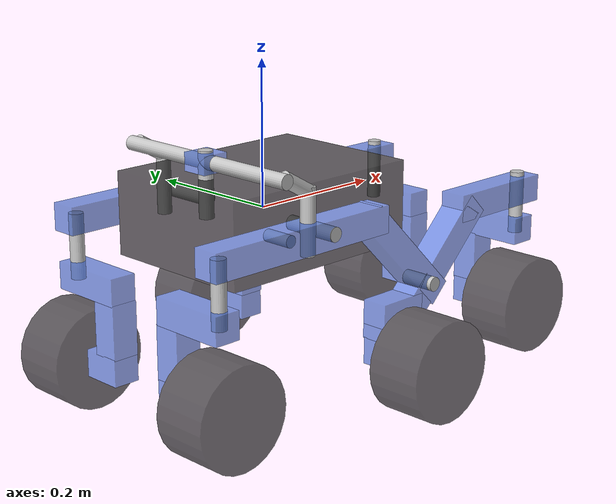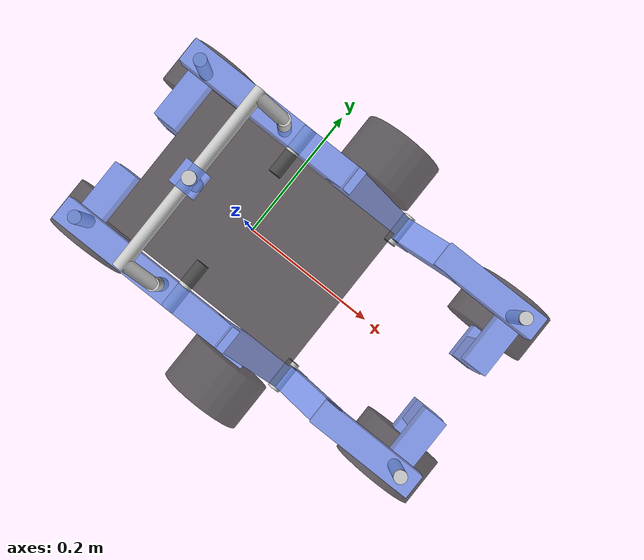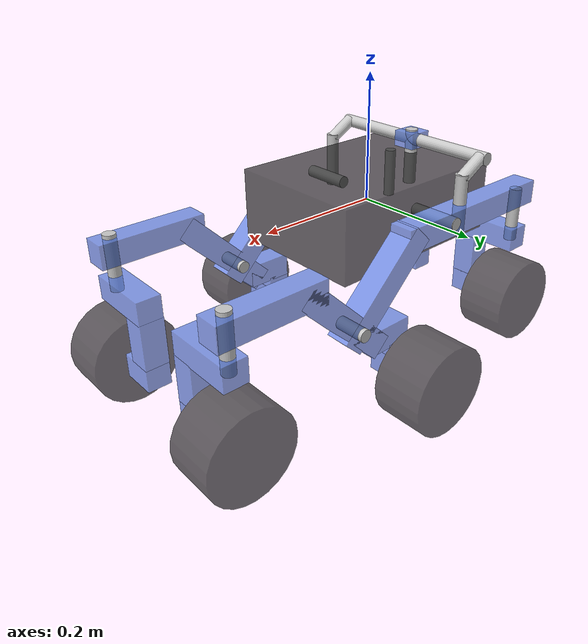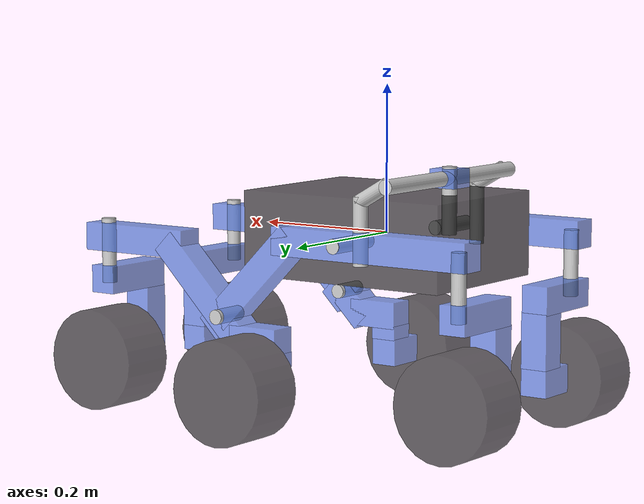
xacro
<?xml version="1.0" encoding="utf-8"?>

<robot name="angela_robot" xmlns:xacro="http://www.ros.org/wiki/xacro">

<xacro:property name="SM" value="0.001" /> <!--size multiplier-->

<xacro:property name="CHASSIS_WIDTH" value="${225*SM}" />
<xacro:property name="CHASSIS_HEIGHT" value="${115*SM}" />
<xacro:property name="CHASSIS_LENGTH" value="${310*SM}" />

<xacro:property name="WHEEL_RADIUS" value="${70*SM}" />
<xacro:property name="WHEEL_THICKNESS" value="${80*SM}" />

<xacro:property name="RB_RADIUS" value="${10*SM}" />
<xacro:property name="RB_LENGTH" value="${80*SM}" />

<xacro:property name="CORNER_RADIUS" value="${10*SM}" />
<xacro:property name="CORNER_LENGTH" value="${90*SM}" />

<xacro:property name="FRONT_RADIUS" value="${10*SM}" />
<xacro:property name="FRONT_LENGTH" value="${50*SM}" />

<xacro:property name="chassisMass" value="5.0" />
<xacro:property name="rbMass" value="0.05" />
<xacro:property name="wheelMass" value="0.4" />

<xacro:property name="rbMu" value="0.8" />
<xacro:property name="rbMu2" value="0.8" />
<xacro:property name="rbKp" value="1000000.0" />
<xacro:property name="rbKd" value="1.0" />
<xacro:property name="rbMinDepth" value="0.001" />
<xacro:property name="rbMaxVel" value="0.0" />

<xacro:property name="cornerMu" value="0.8" />
<xacro:property name="cornerMu2" value="0.8" />
<xacro:property name="cornerKp" value="1000000.0" />
<xacro:property name="cornerKd" value="1.0" />
<xacro:property name="cornerMinDepth" value="0.001" />
<xacro:property name="cornerMaxVel" value="0.0" />

<xacro:property name="wheelMu" value="0.8" />
<xacro:property name="wheelMu2" value="0.8" />
<xacro:property name="wheelKp" value="1000000.0" />
<xacro:property name="wheelKd" value="1.0" />
<xacro:property name="wheelMinDepth" value="0.001" />
<xacro:property name="wheelMaxVel" value="0.0" />

<xacro:include filename="$(find angela_description)/urdf/materials.xacro" />
<xacro:include filename="$(find angela_description)/urdf/macros.xacro" />
<xacro:include filename="$(find angela_description)/urdf/angela_v1.gazebo" />

    <!-- CHASSIS START -->
    <link name="base_link">
    <visual>
        <default_origin />
        <geometry>
        <box size="${CHASSIS_LENGTH} ${CHASSIS_WIDTH} ${CHASSIS_HEIGHT}"/>
        </geometry>
        <material name="black" />
    </visual>
    <collision>
        <default_origin />
        <geometry>
        <box size="${CHASSIS_LENGTH} ${CHASSIS_WIDTH} ${CHASSIS_HEIGHT}"/>
        </geometry>
    </collision>
    <inertial>
        <default_origin />
        <mass value="${chassisMass}"/>
        <box_inertia m="${chassisMass}" x="${CHASSIS_LENGTH}" y="${CHASSIS_WIDTH}" z="${CHASSIS_HEIGHT}"/>
    </inertial>
    </link>
    <!-- CHASSIS END -->

    <!-- LEFT RB START -->
    <cylinderLink
        c_name="left_rb_link"
        c_mass="${rbMass}"
        c_materialName="grey"
        c_radius="${RB_RADIUS}"
        c_length="${RB_LENGTH}"
        c_mu="${rbMu}"
        c_mu2="${rbMu2}"
        c_kp="${rbKp}"
        c_kd="${rbKd}"
        c_min_depth="${rbMinDepth}"
        c_max_vel="${rbMaxVel}"
        c_originrpy="${pi/2} 0 0"
        c_originxyz="0 0 0" />

    <joint name="left_rb_joint" type="revolute">
        <origin xyz="-0.025 0.12 0" />
        <parent link="base_link" />
        <child link="left_rb_link" />
        <axis xyz="0 1 0" />
        <limit effort="30" velocity="1.0" lower="-1" upper="1" />
    </joint>
    <!-- LEFT RB END -->

    <!-- RIGHT RB START -->
    <cylinderLink
        c_name="right_rb_link"
        c_mass="${rbMass}"
        c_materialName="grey"
        c_radius="${RB_RADIUS}"
        c_length="${RB_LENGTH}"
        c_mu="${rbMu}"
        c_mu2="${rbMu2}"
        c_kp="${rbKp}"
        c_kd="${rbKd}"
        c_min_depth="${rbMinDepth}"
        c_max_vel="${rbMaxVel}"
        c_originrpy="${pi/2} 0 0"
        c_originxyz="0 0 0" />

    <joint name="right_rb_joint" type="revolute">
        <origin xyz="-0.025 -0.12 0" />
        <parent link="base_link" />
        <child link="right_rb_link" />
        <axis xyz="0 1 0" />
        <limit effort="30" velocity="1.0" lower="-1" upper="1" />
    </joint>
    <!-- RIGHT RB END -->

    <!-- LEFT CHASSIS 1 START -->
    <u_channel u_name="left_chassis_1" u_length="0.3" u_parent="left_rb_link" u_originxyz="-0.05 0.02 0" u_originrpy="0 0 0" />
    <u_channel u_name="right_chassis_1" u_length="0.3" u_parent="right_rb_link" u_originxyz="-0.05 -0.02 0" u_originrpy="0 0 0" />

    <u_channel u_name="left_chassis_2" u_length="0.19" u_parent="left_chassis_1_link" u_originxyz="0.19 0 -0.06" u_originrpy="0 ${pi / 4} 0" />
    <u_channel u_name="right_chassis_2" u_length="0.19" u_parent="right_chassis_1_link" u_originxyz="0.19 0 -0.06" u_originrpy="0 ${pi / 4} 0" />
    <!-- LEFT CHASSIS 1 END -->

    <!-- LEFT CORNER BACK START -->
    <cylinderLink
        c_name="left_corner_back_link"
        c_mass="${rbMass}"
        c_materialName="grey"
        c_radius="${CORNER_RADIUS}"
        c_length="${CORNER_LENGTH}"
        c_mu="${cornerMu}"
        c_mu2="${cornerMu2}"
        c_kp="${cornerKp}"
        c_kd="${cornerKd}"
        c_min_depth="${cornerMinDepth}"
        c_max_vel="${cornerMaxVel}"
        c_originrpy="0 0 0"
        c_originxyz="0 0 0" />

    <joint name="left_corner_back_joint" type="revolute">
        <origin xyz="-0.13 0 -0.04" rpy="0 0 ${pi/2}" />
        <parent link="left_chassis_1_link" />
        <child link="left_corner_back_link" />
        <axis xyz="0 0 1" />
        <limit effort="30" velocity="1.0" lower="${-pi/3}" upper="${pi/3}" />
    </joint>

    <u_channel u_name="left_chassis_3" u_length="0.11" u_parent="left_corner_back_link" u_originxyz="-0.04 0 -0.04" u_originrpy="0 0 0" />

    <u_channel u_name="left_chassis_4" u_length="0.075" u_parent="left_chassis_3_link" u_originxyz="-0.037 0 -0.055" u_originrpy="0 ${pi / 2} 0" />

    <u_channel u_name="left_chassis_5" u_length="0.075" u_parent="left_chassis_4_link" u_originxyz="0.055 0 0.019" u_originrpy="0 ${pi / 2} 0" />

    <!-- LEFT CORNER BACK END -->

    <!-- RIGHT CORNER BACK START -->
    <cylinderLink
        c_name="right_corner_back_link"
        c_mass="${rbMass}"
        c_materialName="grey"
        c_radius="${CORNER_RADIUS}"
        c_length="${CORNER_LENGTH}"
        c_mu="${cornerMu}"
        c_mu2="${cornerMu2}"
        c_kp="${cornerKp}"
        c_kd="${cornerKd}"
        c_min_depth="${cornerMinDepth}"
        c_max_vel="${cornerMaxVel}"
        c_originrpy="0 0 0"
        c_originxyz="0 0 0" />

    <joint name="right_corner_back_joint" type="revolute">
        <origin xyz="-0.13 0 -0.04" rpy="0 0 ${-pi/2}" />
        <parent link="right_chassis_1_link" />
        <child link="right_corner_back_link" />
        <axis xyz="0 0 1" />
        <limit effort="30" velocity="1.0" lower="${-pi/3}" upper="${pi/3}" />
    </joint>

    <u_channel u_name="right_chassis_3" u_length="0.11" u_parent="right_corner_back_link" u_originxyz="-0.04 0 -0.04" u_originrpy="0 0 0" />

    <u_channel u_name="right_chassis_4" u_length="0.075" u_parent="right_chassis_3_link" u_originxyz="-0.037 0 -0.055" u_originrpy="0 ${pi / 2} 0" />

    <u_channel u_name="right_chassis_5" u_length="0.075" u_parent="right_chassis_4_link" u_originxyz="0.055 0 0.019" u_originrpy="0 ${pi / 2} 0" />

    <!-- LEFT CORNER BACK END -->

    <!-- LEFT BACK WHEEL START -->
    <cylinderLink
        c_name="left_back_wheel_link"
        c_mass="${wheelMass}"
        c_materialName="black"
        c_radius="${WHEEL_RADIUS}"
        c_length="${WHEEL_THICKNESS}"
        c_mu="${wheelMu}"
        c_mu2="${wheelMu2}"
        c_kp="${wheelKp}"
        c_kd="${wheelKd}"
        c_min_depth="${wheelMinDepth}"
        c_max_vel="${wheelMaxVel}"
        c_originrpy="${pi /2} 0 ${pi /2}"
        c_originxyz="0 0 0" />

    <joint name="left_back_wheel_joint" type="continuous">
        <origin xyz="-0.06 0 0" rpy="0 0 0" />
        <parent link="left_chassis_5_link" />
        <child link="left_back_wheel_link" />
        <axis xyz="1 0 0" />
    </joint>
    <!-- LEFT BACK WHEEL END -->

    <!-- RIGHT BACK WHEEL START -->
    <cylinderLink
        c_name="right_back_wheel_link"
        c_mass="${wheelMass}"
        c_materialName="black"
        c_radius="${WHEEL_RADIUS}"
        c_length="${WHEEL_THICKNESS}"
        c_mu="${wheelMu}"
        c_mu2="${wheelMu2}"
        c_kp="${wheelKp}"
        c_kd="${wheelKd}"
        c_min_depth="${wheelMinDepth}"
        c_max_vel="${wheelMaxVel}"
        c_originrpy="${pi /2} 0 ${pi /2}"
        c_originxyz="0 0 0" />

    <joint name="right_back_wheel_joint" type="continuous">
        <origin xyz="-0.06 0 0" rpy="0 0 0" />
        <parent link="right_chassis_5_link" />
        <child link="right_back_wheel_link" />
        <axis xyz="1 0 0" />
    </joint>
    <!-- RIGHT BACK WHEEL END -->

    <!-- LEFT MIDDLE START -->
    <cylinderLink
        c_name="left_chassis_6_link"
        c_mass="${rbMass}"
        c_materialName="grey"
        c_radius="${FRONT_RADIUS}"
        c_length="${FRONT_LENGTH}"
        c_mu="${cornerMu}"
        c_mu2="${cornerMu2}"
        c_kp="${cornerKp}"
        c_kd="${cornerKd}"
        c_min_depth="${cornerMinDepth}"
        c_max_vel="${cornerMaxVel}"
        c_originrpy="0 0 0"
        c_originxyz="0 0 0" />

    <joint name="left_chassis_6_joint" type="revolute">
        <origin xyz="0.07 0 0" rpy="${pi/2} 0 0" />
        <parent link="left_chassis_2_link" />
        <child link="left_chassis_6_link" />
        <axis xyz="0 0 1" />
        <limit effort="30" velocity="1.0" lower="${-pi/3}" upper="${pi/3}" />
    </joint>

    <u_channel u_name="left_chassis_7" u_length="0.19" u_parent="left_chassis_6_link" u_originxyz="0 0.04 0" u_originrpy="0 0 ${pi/2}" />
    <u_channel u_name="left_chassis_8" u_length="0.17" u_parent="left_chassis_7_link" u_originxyz="0.13 -0.04 0" u_originrpy="0 0 ${-pi/4}" />
    <u_channel u_name="left_chassis_9" u_length="0.075" u_parent="left_chassis_7_link" u_originxyz="-0.1 0.02 0" u_originrpy="0 0 ${-pi/4}" />
    <u_channel u_name="left_chassis_10" u_length="0.02" u_parent="left_chassis_9_link" u_originxyz="-0.019 -0.025 0" u_originrpy="0 0 ${pi/2}" />
    <u_channel u_name="left_chassis_11" u_length="0.075" u_parent="left_chassis_10_link" u_originxyz="-0.028 0 -0.02" u_originrpy="0 ${pi / 2} 0" />
    <!-- LEFT MIDDLE END-->

    <!-- RIGHT MIDDLE START -->
    <cylinderLink
        c_name="right_chassis_6_link"
        c_mass="${rbMass}"
        c_materialName="grey"
        c_radius="${FRONT_RADIUS}"
        c_length="${FRONT_LENGTH}"
        c_mu="${cornerMu}"
        c_mu2="${cornerMu2}"
        c_kp="${cornerKp}"
        c_kd="${cornerKd}"
        c_min_depth="${cornerMinDepth}"
        c_max_vel="${cornerMaxVel}"
        c_originrpy="0 0 0"
        c_originxyz="0 0 0" />

    <joint name="right_chassis_6_joint" type="revolute">
        <origin xyz="0.07 0 0" rpy="${pi/2} 0 0" />
        <parent link="right_chassis_2_link" />
        <child link="right_chassis_6_link" />
        <axis xyz="0 0 1" />
        <limit effort="30" velocity="1.0" lower="${-pi/3}" upper="${pi/3}" />
    </joint>

    <u_channel u_name="right_chassis_7" u_length="0.19" u_parent="right_chassis_6_link" u_originxyz="0 0.04 0" u_originrpy="0 0 ${pi/2}" />
    <u_channel u_name="right_chassis_8" u_length="0.17" u_parent="right_chassis_7_link" u_originxyz="0.13 -0.04 0" u_originrpy="0 0 ${-pi/4}" />
    <u_channel u_name="right_chassis_9" u_length="0.075" u_parent="right_chassis_7_link" u_originxyz="-0.1 0.02 0" u_originrpy="0 0 ${-pi/4}" />
    <u_channel u_name="right_chassis_10" u_length="0.02" u_parent="right_chassis_9_link" u_originxyz="-0.019 -0.025 0" u_originrpy="0 0 ${pi/2}" />
    <u_channel u_name="right_chassis_11" u_length="0.075" u_parent="right_chassis_10_link" u_originxyz="-0.028 0 0.02" u_originrpy="0 ${pi / 2} 0" />
    <!-- RIGHT MIDDLE END-->

    <!-- LEFT MIDDLE WHEEL START -->
    <cylinderLink
        c_name="left_middle_wheel_link"
        c_mass="${wheelMass}"
        c_materialName="black"
        c_radius="${WHEEL_RADIUS}"
        c_length="${WHEEL_THICKNESS}"
        c_mu="${wheelMu}"
        c_mu2="${wheelMu2}"
        c_kp="${wheelKp}"
        c_kd="${wheelKd}"
        c_min_depth="${wheelMinDepth}"
        c_max_vel="${wheelMaxVel}"
        c_originrpy="${pi /2} 0 ${pi /2}"
        c_originxyz="0 0 0" />

    <joint name="left_middle_wheel_joint" type="continuous">
        <origin xyz="0.06 0 0" rpy="0 0 0" />
        <parent link="left_chassis_11_link" />
        <child link="left_middle_wheel_link" />
        <axis xyz="1 0 0" />
    </joint>
    <!-- LEFT MIDDLE WHEEL END -->

    <!-- RIGHT MIDDLE WHEEL START -->
    <cylinderLink
        c_name="right_middle_wheel_link"
        c_mass="${wheelMass}"
        c_materialName="black"
        c_radius="${WHEEL_RADIUS}"
        c_length="${WHEEL_THICKNESS}"
        c_mu="${wheelMu}"
        c_mu2="${wheelMu2}"
        c_kp="${wheelKp}"
        c_kd="${wheelKd}"
        c_min_depth="${wheelMinDepth}"
        c_max_vel="${wheelMaxVel}"
        c_originrpy="${pi /2} 0 ${pi /2}"
        c_originxyz="0 0 0" />

    <joint name="right_middle_wheel_joint" type="continuous">
        <origin xyz="-0.06 0 0" rpy="0 0 0" />
        <parent link="right_chassis_11_link" />
        <child link="right_middle_wheel_link" />
        <axis xyz="1 0 0" />
    </joint>
    <!-- RIGHT MIDDLE WHEEL END -->

    <!-- LEFT CORNER FRONT START -->
    <cylinderLink
        c_name="left_corner_front_link"
        c_mass="${rbMass}"
        c_materialName="grey"
        c_radius="${CORNER_RADIUS}"
        c_length="${CORNER_LENGTH}"
        c_mu="${cornerMu}"
        c_mu2="${cornerMu2}"
        c_kp="${cornerKp}"
        c_kd="${cornerKd}"
        c_min_depth="${cornerMinDepth}"
        c_max_vel="${cornerMaxVel}"
        c_originrpy="0 0 0"
        c_originxyz="0 0 0" />

    <joint name="left_corner_front_joint" type="revolute">
        <origin xyz="0.06 -0.02 0" rpy="${-pi/2} ${pi/2} 0" />
        <parent link="left_chassis_8_link" />
        <child link="left_corner_front_link" />
        <axis xyz="0 0 1" />
        <limit effort="30" velocity="1.0" lower="${-pi/3}" upper="${pi/3}" />
    </joint>

    <u_channel u_name="left_chassis_12" u_length="0.11" u_parent="left_corner_front_link" u_originxyz="-0.04 0 -0.04" u_originrpy="0 0 0" />

    <u_channel u_name="left_chassis_13" u_length="0.075" u_parent="left_chassis_12_link" u_originxyz="-0.037 0 -0.055" u_originrpy="0 ${pi / 2} 0" />

    <u_channel u_name="left_chassis_14" u_length="0.075" u_parent="left_chassis_13_link" u_originxyz="0.055 0 0.019" u_originrpy="0 ${pi / 2} 0" />

    <!-- LEFT CORNER FRONT END -->

    <!-- RIGHT CORNER FRONT START -->
    <cylinderLink
        c_name="right_corner_front_link"
        c_mass="${rbMass}"
        c_materialName="grey"
        c_radius="${CORNER_RADIUS}"
        c_length="${CORNER_LENGTH}"
        c_mu="${cornerMu}"
        c_mu2="${cornerMu2}"
        c_kp="${cornerKp}"
        c_kd="${cornerKd}"
        c_min_depth="${cornerMinDepth}"
        c_max_vel="${cornerMaxVel}"
        c_originrpy="0 0 0"
        c_originxyz="0 0 0" />

    <joint name="right_corner_front_joint" type="revolute">
        <origin xyz="0.06 -0.02 0" rpy="${-pi/2} ${-pi/2} 0" />
        <parent link="right_chassis_8_link" />
        <child link="right_corner_front_link" />
        <axis xyz="0 0 1" />
        <limit effort="30" velocity="1.0" lower="${-pi/3}" upper="${pi/3}" />
    </joint>

    <u_channel u_name="right_chassis_12" u_length="0.11" u_parent="right_corner_front_link" u_originxyz="-0.04 0 -0.04" u_originrpy="0 0 0" />

    <u_channel u_name="right_chassis_13" u_length="0.075" u_parent="right_chassis_12_link" u_originxyz="-0.037 0 -0.055" u_originrpy="0 ${pi / 2} 0" />

    <u_channel u_name="right_chassis_14" u_length="0.075" u_parent="right_chassis_13_link" u_originxyz="0.055 0 0.019" u_originrpy="0 ${pi / 2} 0" />

    <!-- RIGHT CORNER FRONT END -->

    <!-- LEFT FRONT WHEEL START -->
    <cylinderLink
        c_name="left_front_wheel_link"
        c_mass="${wheelMass}"
        c_materialName="black"
        c_radius="${WHEEL_RADIUS}"
        c_length="${WHEEL_THICKNESS}"
        c_mu="${wheelMu}"
        c_mu2="${wheelMu2}"
        c_kp="${wheelKp}"
        c_kd="${wheelKd}"
        c_min_depth="${wheelMinDepth}"
        c_max_vel="${wheelMaxVel}"
        c_originrpy="${pi /2} 0 ${pi /2}"
        c_originxyz="0 0 0" />

    <joint name="left_front_wheel_joint" type="continuous">
        <origin xyz="-0.06 0 0" rpy="0 0 0" />
        <parent link="left_chassis_14_link" />
        <child link="left_front_wheel_link" />
        <axis xyz="1 0 0" />
    </joint>
    <!-- LEFT FRONT WHEEL END -->

    <!-- RIGHT FRONT WHEEL START -->
    <cylinderLink
        c_name="right_front_wheel_link"
        c_mass="${wheelMass}"
        c_materialName="black"
        c_radius="${WHEEL_RADIUS}"
        c_length="${WHEEL_THICKNESS}"
        c_mu="${wheelMu}"
        c_mu2="${wheelMu2}"
        c_kp="${wheelKp}"
        c_kd="${wheelKd}"
        c_min_depth="${wheelMinDepth}"
        c_max_vel="${wheelMaxVel}"
        c_originrpy="${pi /2} 0 ${pi /2}"
        c_originxyz="0 0 0" />

    <joint name="right_front_wheel_joint" type="continuous">
        <origin xyz="-0.06 0 0" rpy="0 0 0" />
        <parent link="right_chassis_14_link" />
        <child link="right_front_wheel_link" />
        <axis xyz="1 0 0" />
    </joint>
    <!-- RIGHT FRONT WHEEL END -->

    <!-- CHASSIS HOLDER START -->
    <cylinderLink
        c_name="chassis_holder_1_link"
        c_mass="${rbMass}"
        c_materialName="grey"
        c_radius="${CORNER_RADIUS}"
        c_length="${CORNER_LENGTH}"
        c_mu="${cornerMu}"
        c_mu2="${cornerMu2}"
        c_kp="${cornerKp}"
        c_kd="${cornerKd}"
        c_min_depth="${cornerMinDepth}"
        c_max_vel="${cornerMaxVel}"
        c_originrpy="0 0 0"
        c_originxyz="0 0 0" />

    <joint name="chassis_holder_1_joint" type="revolute">
        <origin xyz="-0.1 0 0.05" rpy="0 0 0" />
        <parent link="base_link" />
        <child link="chassis_holder_1_link" />
        <axis xyz="0 0 1" />
        <limit effort="30" velocity="1.0" lower="${-pi/3}" upper="${pi/3}" />
    </joint>

    <u_channel u_name="chassis_holder_2" u_length="0.025" u_parent="chassis_holder_1_link" u_originxyz="0 0 0.03" u_originrpy="0 ${pi/2} 0" />

    <cylinderLink
        c_name="chassis_holder_3_link"
        c_mass="0.1"
        c_materialName="grey"
        c_radius="0.01"
        c_length="0.3"
        c_mu="${cornerMu}"
        c_mu2="${cornerMu2}"
        c_kp="${cornerKp}"
        c_kd="${cornerKd}"
        c_min_depth="${cornerMinDepth}"
        c_max_vel="${cornerMaxVel}"
        c_originrpy="0 0 0"
        c_originxyz="0 0 0" />

    <joint name="chassis_holder_3_joint" type="fixed">
        <origin xyz="0 0 0" rpy="${pi/2} 0 0" />
        <parent link="chassis_holder_2_link" />
        <child link="chassis_holder_3_link" />
        <axis xyz="0 0 0" />
    </joint>

    <cylinderLink
        c_name="chassis_left_holder_4_link"
        c_mass="${rbMass}"
        c_materialName="grey"
        c_radius="${CORNER_RADIUS}"
        c_length="${CORNER_LENGTH}"
        c_mu="${cornerMu}"
        c_mu2="${cornerMu2}"
        c_kp="${cornerKp}"
        c_kd="${cornerKd}"
        c_min_depth="${cornerMinDepth}"
        c_max_vel="${cornerMaxVel}"
        c_originrpy="0 0 0"
        c_originxyz="0 0 0" />

    <joint name="chassis_left_holder_4_joint" type="fixed">
        <origin xyz="0.02 0 0.02" rpy="0 0 ${pi/2}" />
        <parent link="left_chassis_1_link" />
        <child link="chassis_left_holder_4_link" />
        <axis xyz="0 0 0" />
    </joint>

    <cylinderLink
        c_name="chassis_right_holder_4_link"
        c_mass="${rbMass}"
        c_materialName="grey"
        c_radius="${CORNER_RADIUS}"
        c_length="${CORNER_LENGTH}"
        c_mu="${cornerMu}"
        c_mu2="${cornerMu2}"
        c_kp="${cornerKp}"
        c_kd="${cornerKd}"
        c_min_depth="${cornerMinDepth}"
        c_max_vel="${cornerMaxVel}"
        c_originrpy="0 0 0"
        c_originxyz="0 0 0" />

    <joint name="chassis_right_holder_4_joint" type="fixed">
        <origin xyz="0.02 0 0.02" rpy="0 0 ${pi/2}" />
        <parent link="right_chassis_1_link" />
        <child link="chassis_right_holder_4_link" />
        <axis xyz="0 0 0" />
    </joint>

    <cylinderLink
        c_name="chassis_left_holder_5_link"
        c_mass="0.03"
        c_materialName="grey"
        c_radius="0.01"
        c_length="0.05"
        c_mu="${cornerMu}"
        c_mu2="${cornerMu2}"
        c_kp="${cornerKp}"
        c_kd="${cornerKd}"
        c_min_depth="${cornerMinDepth}"
        c_max_vel="${cornerMaxVel}"
        c_originrpy="0 0 0"
        c_originxyz="0 0 0" />

    <joint name="chassis_left_holder_5_joint" type="fixed">
        <origin xyz="0 0.02 0.05" rpy="${-pi/3} 0 0" />
        <parent link="chassis_left_holder_4_link" />
        <child link="chassis_left_holder_5_link" />
        <axis xyz="0 0 0" />
    </joint>

    <cylinderLink
        c_name="chassis_right_holder_5_link"
        c_mass="0.03"
        c_materialName="grey"
        c_radius="0.01"
        c_length="0.05"
        c_mu="${cornerMu}"
        c_mu2="${cornerMu2}"
        c_kp="${cornerKp}"
        c_kd="${cornerKd}"
        c_min_depth="${cornerMinDepth}"
        c_max_vel="${cornerMaxVel}"
        c_originrpy="0 0 0"
        c_originxyz="0 0 0" />

    <joint name="chassis_right_holder_5_joint" type="fixed">
        <origin xyz="0 0.02 0.05" rpy="${-pi/3} 0 0" />
        <parent link="chassis_right_holder_4_link" />
        <child link="chassis_right_holder_5_link" />
        <axis xyz="0 0 0" />
    </joint>

    <!-- CHASSIS HOLDER END-->

</robot>

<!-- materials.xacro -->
<robot>

  <material name="black">
    <color rgba="${30/255} ${30/255} ${30/255} 0.7"/>
  </material>

  <material name="blue">
    <color rgba="${79/255} ${119/255} ${227/255} 0.7"/>
  </material>

  <material name="orange">
    <color rgba="${230/255} ${139/255} ${48/255} 1.0"/>
  </material>

  <material name="grey">
    <color rgba="${200/255} ${200/255} ${200/255} 1.0"/>
  </material>

</robot>

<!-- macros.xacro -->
<robot>
  <macro name="cylinder_inertia" params="m r h">
    <inertia  ixx="${m*(3*r*r+h*h)/12}" ixy = "0" ixz = "0"
              iyy="${m*(3*r*r+h*h)/12}" iyz = "0"
              izz="${m*r*r/2}" />
  </macro>

  <macro name="box_inertia" params="m x y z">
    <inertia  ixx="${m*(y*y+z*z)/12}" ixy = "0" ixz = "0"
              iyy="${m*(x*x+z*z)/12}" iyz = "0"
              izz="${m*(x*x+z*z)/12}" />
  </macro>

  <macro name="sphere_inertia" params="m r">
    <inertia  ixx="${2*m*r*r/5}" ixy = "0" ixz = "0"
              iyy="${2*m*r*r/5}" iyz = "0"
              izz="${2*m*r*r/5}" />
  </macro>

  <macro name="default_origin">
    <origin xyz="0 0 0" rpy="0 0 0"/>
  </macro>

  <macro name="surfaceGenerator" params="mu mu2 kp kd min_depth max_vel">
    <surface>
      <friction>
        <ode>
          <mu>${mu}</mu>
          <mu2>${mu2}</mu2>
        </ode>
      </friction>
      <contact>
        <ode>
          <kp>${kp}</kp>
          <kd>${kd}</kd>
          <min_depth>${min_depth}</min_depth>
          <max_vel>${max_vel}</max_vel>
        </ode>
      </contact>
    </surface>
  </macro>

  <macro name="cylinderLink" params="c_name c_mass c_materialName c_radius c_length c_mu c_mu2 c_kp c_kd c_min_depth c_max_vel c_originrpy c_originxyz">
    <link name="${c_name}">
      <visual>
        <origin rpy="${c_originrpy}" xyz="${c_originxyz}"/>
        <geometry>
          <cylinder radius="${c_radius}" length="${c_length}"/>
        </geometry>
        <material name="${c_materialName}" />
      </visual>
      <collision>
        <origin rpy="${c_originrpy}" xyz="${c_originxyz}"/>
        <geometry>
          <cylinder radius="${c_radius}" length="${c_length}"/>
        </geometry>
        <surfaceGenerator mu="${c_mu}" mu2="${c_mu2}" kp="${c_kp}" kd="${c_kd}" min_depth="${c_min_depth}" max_vel="${c_max_vel}" />
      </collision>
      <inertial>
        <origin rpy="${c_originrpy}" xyz="${c_originxyz}"/>
        <mass value="${c_mass}"/>
        <cylinder_inertia m="${c_mass}" r="${c_radius}" h="${c_length}"/>
      </inertial>
    </link>
  </macro>

  <macro name="u_channel" params="u_name u_length u_parent u_originxyz u_originrpy">
    <link name="${u_name}_link">
      <visual>
        <default_origin />
        <geometry>
          <box size="${u_length} 0.038 0.038"/>
        </geometry>
        <material name="blue" />
      </visual>
      <collision>
        <default_origin />
        <geometry>
          <box size="${u_length} 0.038 0.038"/>
        </geometry>
      </collision>
      <inertial>
        <default_origin />
        <mass value="${u_length / 10}"/>
        <box_inertia m="${u_length / 10}" x="${u_length}" y="0.38" z="0.38"/>
      </inertial>
    </link>
    <joint name="${u_name}_link_joint" type="fixed">
      <origin xyz="${u_originxyz}" rpy="${u_originrpy}" />
      <parent link="${u_parent}" />
      <child link="${u_name}_link" />
      <axis xyz="0 0 0" />
    </joint>
  </macro>

</robot>
